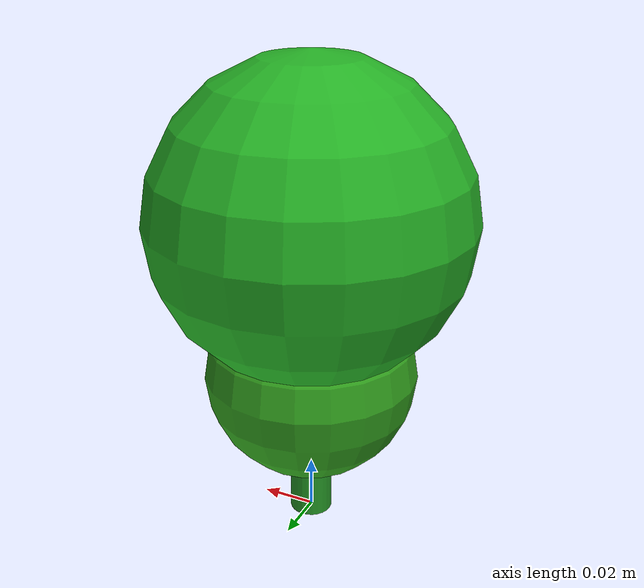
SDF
<?xml version="1.0"?>
<sdf version="1.9">
  <model name="weed_small">
    <static>true</static>
    <link name="weed_link">
      <visual name="stem">
        <pose>0 0 0.05 0 0 0</pose>
        <geometry>
          <cylinder><radius>0.008</radius><length>0.10</length></cylinder>
        </geometry>
        <material>
          <ambient>0.1 0.5 0.1 1</ambient>
          <diffuse>0.15 0.60 0.15 1</diffuse>
        </material>
      </visual>
      <!-- 葉 (上部) -->
      <visual name="leaf_top">
        <pose>0 0 0.12 0 0 0</pose>
        <geometry>
          <sphere><radius>0.06</radius></sphere>
        </geometry>
        <material>
          <ambient>0.1 0.6 0.1 1</ambient>
          <diffuse>0.15 0.70 0.15 1</diffuse>
        </material>
      </visual>
      <!-- 葉 (横広がり) -->
      <visual name="leaf_wide">
        <pose>0 0 0.06 0 0 0</pose>
        <geometry>
          <sphere>
            <radius>0.04</radius>
          </sphere>
        </geometry>
        <material>
          <ambient>0.15 0.55 0.10 1</ambient>
          <diffuse>0.20 0.65 0.12 1</diffuse>
        </material>
      </visual>
      <!-- コリジョン (簡略化) -->
      <collision name="weed_collision">
        <pose>0 0 0.06 0 0 0</pose>
        <geometry>
          <cylinder><radius>0.06</radius><length>0.12</length></cylinder>
        </geometry>
      </collision>
    </link>
  </model>
</sdf>
